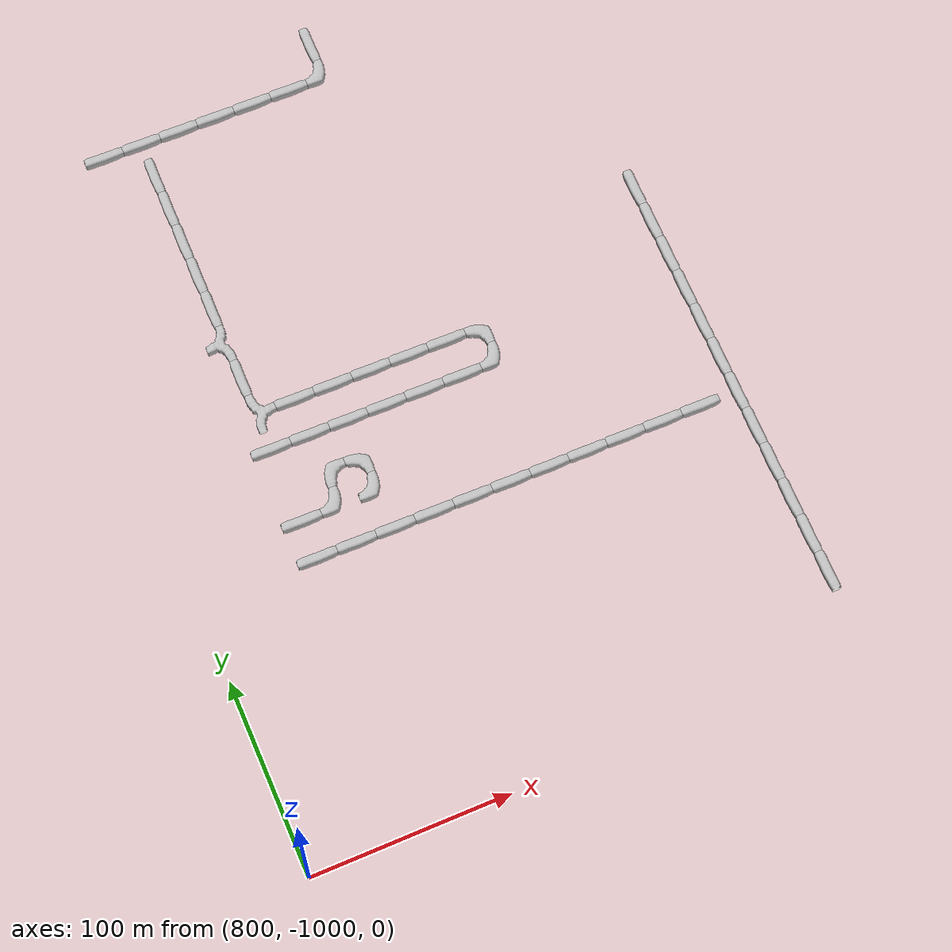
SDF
<sdf version="1.6">
 <world name="cave_32000_32">
  <include>
   <static>true</static>
   <name>cave_42_-31</name>
   <pose>840 -620 0 0 0 1.5707963267948966</pose>
   <uri>model://cave_straight_20m</uri>
  </include>
  <include>
   <static>true</static>
   <name>cave_43_-31</name>
   <pose>860 -620 0 0 0 1.5707963267948966</pose>
   <uri>model://cave_straight_20m</uri>
  </include>
  <include>
   <static>true</static>
   <name>cave_44_-31</name>
   <pose>880 -620 0 0 0 1.5707963267948966</pose>
   <uri>model://cave_straight_20m</uri>
  </include>
  <include>
   <static>true</static>
   <name>cave_45_-31</name>
   <pose>900 -620 0 0 0 1.5707963267948966</pose>
   <uri>model://cave_straight_20m</uri>
  </include>
  <include>
   <static>true</static>
   <name>cave_46_-31</name>
   <pose>920 -620 0 0 0 1.5707963267948966</pose>
   <uri>model://cave_straight_20m</uri>
  </include>
  <include>
   <static>true</static>
   <name>cave_47_-31</name>
   <pose>940 -620 0 0 0 1.5707963267948966</pose>
   <uri>model://cave_straight_20m</uri>
  </include>
  <include>
   <static>true</static>
   <name>cave_48_-31</name>
   <pose>960 -620 0 0 0 1.5707963267948966</pose>
   <uri>model://cave_L_20m</uri>
  </include>
  <include>
   <static>true</static>
   <name>cave_48_-30</name>
   <pose>960 -600 0 0 0 0.0</pose>
   <uri>model://cave_straight_20m</uri>
  </include>
  <include>
   <static>true</static>
   <name>cave_54_-37</name>
   <pose>1080 -740 0 0 0 0.0</pose>
   <uri>model://cave_straight_20m</uri>
  </include>
  <include>
   <static>true</static>
   <name>cave_54_-38</name>
   <pose>1080 -760 0 0 0 0.0</pose>
   <uri>model://cave_straight_20m</uri>
  </include>
  <include>
   <static>true</static>
   <name>cave_54_-39</name>
   <pose>1080 -780 0 0 0 0.0</pose>
   <uri>model://cave_straight_20m</uri>
  </include>
  <include>
   <static>true</static>
   <name>cave_54_-40</name>
   <pose>1080 -800 0 0 0 0.0</pose>
   <uri>model://cave_straight_20m</uri>
  </include>
  <include>
   <static>true</static>
   <name>cave_54_-41</name>
   <pose>1080 -820 0 0 0 0.0</pose>
   <uri>model://cave_straight_20m</uri>
  </include>
  <include>
   <static>true</static>
   <name>cave_54_-42</name>
   <pose>1080 -840 0 0 0 0.0</pose>
   <uri>model://cave_straight_20m</uri>
  </include>
  <include>
   <static>true</static>
   <name>cave_54_-43</name>
   <pose>1080 -860 0 0 0 0.0</pose>
   <uri>model://cave_straight_20m</uri>
  </include>
  <include>
   <static>true</static>
   <name>cave_54_-44</name>
   <pose>1080 -880 0 0 0 0.0</pose>
   <uri>model://cave_straight_20m</uri>
  </include>
  <include>
   <static>true</static>
   <name>cave_54_-45</name>
   <pose>1080 -900 0 0 0 0.0</pose>
   <uri>model://cave_straight_20m</uri>
  </include>
  <include>
   <static>true</static>
   <name>cave_54_-46</name>
   <pose>1080 -920 0 0 0 0.0</pose>
   <uri>model://cave_straight_20m</uri>
  </include>
  <include>
   <static>true</static>
   <name>cave_54_-47</name>
   <pose>1080 -940 0 0 0 0.0</pose>
   <uri>model://cave_straight_20m</uri>
  </include>
  <include>
   <static>true</static>
   <name>cave_54_-48</name>
   <pose>1080 -960 0 0 0 0.0</pose>
   <uri>model://cave_straight_20m</uri>
  </include>
  <include>
   <static>true</static>
   <name>cave_43_-42</name>
   <pose>860 -840 0 0 0 1.5707963267948966</pose>
   <uri>model://cave_straight_20m</uri>
  </include>
  <include>
   <static>true</static>
   <name>cave_44_-42</name>
   <pose>880 -840 0 0 0 1.5707963267948966</pose>
   <uri>model://cave_L_20m</uri>
  </include>
  <include>
   <static>true</static>
   <name>cave_44_-41</name>
   <pose>880 -820 0 0 0 -1.5707963267948966</pose>
   <uri>model://cave_L_20m</uri>
  </include>
  <include>
   <static>true</static>
   <name>cave_45_-41</name>
   <pose>900 -820 0 0 0 3.141592653589793</pose>
   <uri>model://cave_L_20m</uri>
  </include>
  <include>
   <static>true</static>
   <name>cave_45_-42</name>
   <pose>900 -840 0 0 0 1.5707963267948966</pose>
   <uri>model://cave_L_20m</uri>
  </include>
  <include>
   <static>true</static>
   <name>cave_43_-43</name>
   <pose>860 -860 0 0 0 1.5707963267948966</pose>
   <uri>model://cave_straight_20m</uri>
  </include>
  <include>
   <static>true</static>
   <name>cave_44_-43</name>
   <pose>880 -860 0 0 0 1.5707963267948966</pose>
   <uri>model://cave_straight_20m</uri>
  </include>
  <include>
   <static>true</static>
   <name>cave_45_-43</name>
   <pose>900 -860 0 0 0 1.5707963267948966</pose>
   <uri>model://cave_straight_20m</uri>
  </include>
  <include>
   <static>true</static>
   <name>cave_46_-43</name>
   <pose>920 -860 0 0 0 1.5707963267948966</pose>
   <uri>model://cave_straight_20m</uri>
  </include>
  <include>
   <static>true</static>
   <name>cave_47_-43</name>
   <pose>940 -860 0 0 0 1.5707963267948966</pose>
   <uri>model://cave_straight_20m</uri>
  </include>
  <include>
   <static>true</static>
   <name>cave_48_-43</name>
   <pose>960 -860 0 0 0 1.5707963267948966</pose>
   <uri>model://cave_straight_20m</uri>
  </include>
  <include>
   <static>true</static>
   <name>cave_49_-43</name>
   <pose>980 -860 0 0 0 1.5707963267948966</pose>
   <uri>model://cave_straight_20m</uri>
  </include>
  <include>
   <static>true</static>
   <name>cave_50_-43</name>
   <pose>1000 -860 0 0 0 1.5707963267948966</pose>
   <uri>model://cave_straight_20m</uri>
  </include>
  <include>
   <static>true</static>
   <name>cave_51_-43</name>
   <pose>1020 -860 0 0 0 1.5707963267948966</pose>
   <uri>model://cave_straight_20m</uri>
  </include>
  <include>
   <static>true</static>
   <name>cave_52_-43</name>
   <pose>1040 -860 0 0 0 1.5707963267948966</pose>
   <uri>model://cave_straight_20m</uri>
  </include>
  <include>
   <static>true</static>
   <name>cave_53_-43</name>
   <pose>1060 -860 0 0 0 1.5707963267948966</pose>
   <uri>model://cave_straight_20m</uri>
  </include>
  <include>
   <static>true</static>
   <name>cave_43_-40</name>
   <pose>860 -800 0 0 0 1.5707963267948966</pose>
   <uri>model://cave_straight_20m</uri>
  </include>
  <include>
   <static>true</static>
   <name>cave_44_-40</name>
   <pose>880 -800 0 0 0 1.5707963267948966</pose>
   <uri>model://cave_straight_20m</uri>
  </include>
  <include>
   <static>true</static>
   <name>cave_45_-40</name>
   <pose>900 -800 0 0 0 1.5707963267948966</pose>
   <uri>model://cave_straight_20m</uri>
  </include>
  <include>
   <static>true</static>
   <name>cave_46_-40</name>
   <pose>920 -800 0 0 0 1.5707963267948966</pose>
   <uri>model://cave_straight_20m</uri>
  </include>
  <include>
   <static>true</static>
   <name>cave_47_-40</name>
   <pose>940 -800 0 0 0 1.5707963267948966</pose>
   <uri>model://cave_straight_20m</uri>
  </include>
  <include>
   <static>true</static>
   <name>cave_48_-40</name>
   <pose>960 -800 0 0 0 1.5707963267948966</pose>
   <uri>model://cave_straight_20m</uri>
  </include>
  <include>
   <static>true</static>
   <name>cave_49_-40</name>
   <pose>980 -800 0 0 0 1.5707963267948966</pose>
   <uri>model://cave_L_20m</uri>
  </include>
  <include>
   <static>true</static>
   <name>cave_49_-39</name>
   <pose>980 -780 0 0 0 3.141592653589793</pose>
   <uri>model://cave_L_20m</uri>
  </include>
  <include>
   <static>true</static>
   <name>cave_48_-39</name>
   <pose>960 -780 0 0 0 1.5707963267948966</pose>
   <uri>model://cave_straight_20m</uri>
  </include>
  <include>
   <static>true</static>
   <name>cave_47_-39</name>
   <pose>940 -780 0 0 0 1.5707963267948966</pose>
   <uri>model://cave_straight_20m</uri>
  </include>
  <include>
   <static>true</static>
   <name>cave_46_-39</name>
   <pose>920 -780 0 0 0 1.5707963267948966</pose>
   <uri>model://cave_straight_20m</uri>
  </include>
  <include>
   <static>true</static>
   <name>cave_45_-39</name>
   <pose>900 -780 0 0 0 1.5707963267948966</pose>
   <uri>model://cave_straight_20m</uri>
  </include>
  <include>
   <static>true</static>
   <name>cave_44_-39</name>
   <pose>880 -780 0 0 0 1.5707963267948966</pose>
   <uri>model://cave_straight_20m</uri>
  </include>
  <include>
   <static>true</static>
   <name>cave_43_-39</name>
   <pose>860 -780 0 0 0 -1.5707963267948966</pose>
   <uri>model://cave_3way_20m</uri>
  </include>
  <include>
   <static>true</static>
   <name>cave_43_-38</name>
   <pose>860 -760 0 0 0 0.0</pose>
   <uri>model://cave_straight_20m</uri>
  </include>
  <include>
   <static>true</static>
   <name>cave_43_-37</name>
   <pose>860 -740 0 0 0 1.5707963267948966</pose>
   <uri>model://cave_3way_20m</uri>
  </include>
  <include>
   <static>true</static>
   <name>cave_43_-36</name>
   <pose>860 -720 0 0 0 0.0</pose>
   <uri>model://cave_straight_20m</uri>
  </include>
  <include>
   <static>true</static>
   <name>cave_43_-35</name>
   <pose>860 -700 0 0 0 0.0</pose>
   <uri>model://cave_straight_20m</uri>
  </include>
  <include>
   <static>true</static>
   <name>cave_43_-34</name>
   <pose>860 -680 0 0 0 0.0</pose>
   <uri>model://cave_straight_20m</uri>
  </include>
  <include>
   <static>true</static>
   <name>cave_43_-33</name>
   <pose>860 -660 0 0 0 0.0</pose>
   <uri>model://cave_straight_20m</uri>
  </include>
  <include>
   <static>true</static>
   <name>cave_43_-32</name>
   <pose>860 -640 0 0 0 0.0</pose>
   <uri>model://cave_straight_20m</uri>
  </include>
 </world>
</sdf>
